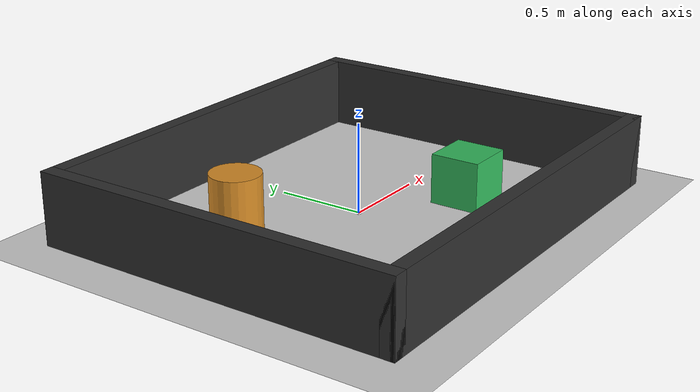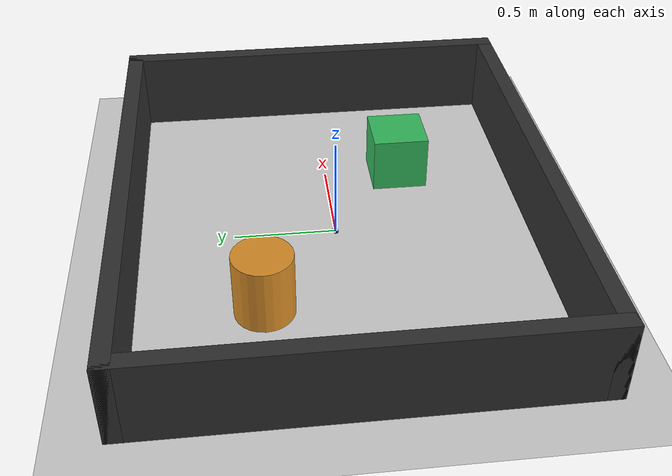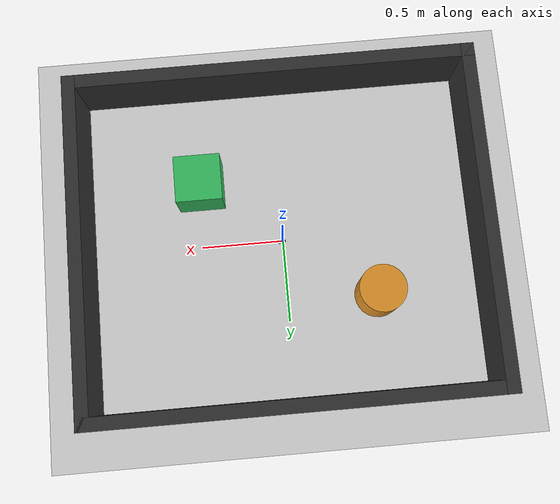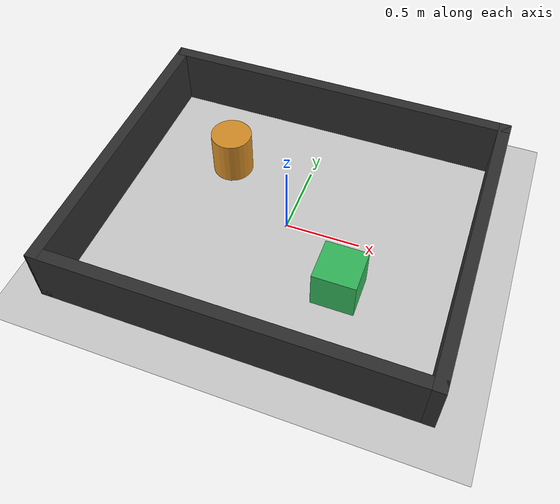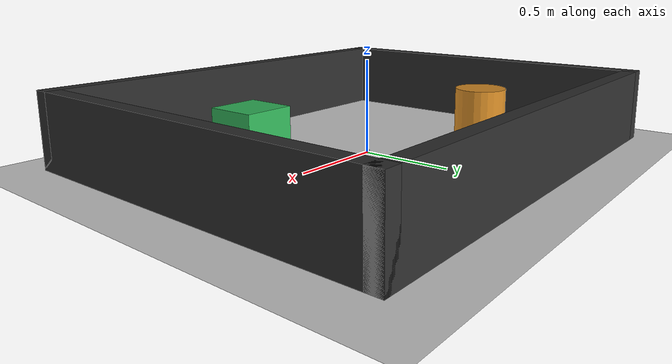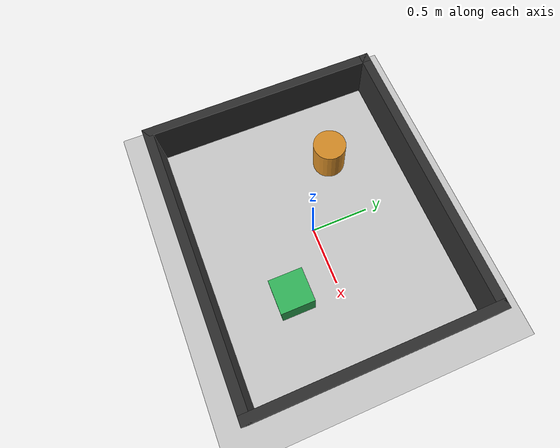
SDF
<?xml version="1.0"?>
<sdf version="1.6">
  <world name="boe_navigation_test_world">
    <plugin name="gazebo_ros_state" filename="libgazebo_ros_state.so">
      <update_rate>30.0</update_rate>
    </plugin>

    <plugin
      name="boe_caster_visual_plugin"
      filename="libboe_caster_visual_plugin.so"/>

    <include>
      <uri>model://ground_plane</uri>
    </include>

    <include>
      <uri>model://sun</uri>
    </include>

    <!-- Hai mesh caster chỉ dùng để hiển thị và được plugin đồng bộ với robot. -->
    <model name="boe_caster_rotation_visual">
      <static>true</static>
      <link name="link">
        <visual name="visual">
          <geometry>
            <mesh>
              <uri>model://boe_robot_description/meshes/caster_rotation_link.STL</uri>
            </mesh>
          </geometry>
          <material>
            <ambient>0.796 0.824 0.937 1</ambient>
            <diffuse>0.796 0.824 0.937 1</diffuse>
          </material>
        </visual>
      </link>
    </model>

    <model name="boe_caster_wheel_visual">
      <static>true</static>
      <link name="link">
        <visual name="visual">
          <pose>0 0 0 -1.5707963268 0 0</pose>
          <geometry>
            <mesh>
              <uri>model://boe_robot_description/meshes/caster_wheel_link.STL</uri>
            </mesh>
          </geometry>
          <material>
            <ambient>0.05 0.05 0.05 1</ambient>
            <diffuse>0.05 0.05 0.05 1</diffuse>
          </material>
        </visual>
      </link>
    </model>

    <!-- Phòng kín 2.4 m x 2.0 m. -->
    <model name="front_wall">
      <static>true</static>
      <pose>1.20 0 0.20 0 0 0</pose>
      <link name="link">
        <collision name="collision">
          <geometry>
            <box>
              <size>0.08 2.08 0.40</size>
            </box>
          </geometry>
        </collision>
        <visual name="visual">
          <geometry>
            <box>
              <size>0.08 2.08 0.40</size>
            </box>
          </geometry>
          <material>
            <ambient>0.18 0.18 0.18 1</ambient>
            <diffuse>0.18 0.18 0.18 1</diffuse>
          </material>
        </visual>
      </link>
    </model>

    <model name="rear_wall">
      <static>true</static>
      <pose>-1.20 0 0.20 0 0 0</pose>
      <link name="link">
        <collision name="collision">
          <geometry>
            <box>
              <size>0.08 2.08 0.40</size>
            </box>
          </geometry>
        </collision>
        <visual name="visual">
          <geometry>
            <box>
              <size>0.08 2.08 0.40</size>
            </box>
          </geometry>
          <material>
            <ambient>0.18 0.18 0.18 1</ambient>
            <diffuse>0.18 0.18 0.18 1</diffuse>
          </material>
        </visual>
      </link>
    </model>

    <model name="left_wall">
      <static>true</static>
      <pose>0 1.00 0.20 0 0 0</pose>
      <link name="link">
        <collision name="collision">
          <geometry>
            <box>
              <size>2.48 0.08 0.40</size>
            </box>
          </geometry>
        </collision>
        <visual name="visual">
          <geometry>
            <box>
              <size>2.48 0.08 0.40</size>
            </box>
          </geometry>
          <material>
            <ambient>0.18 0.18 0.18 1</ambient>
            <diffuse>0.18 0.18 0.18 1</diffuse>
          </material>
        </visual>
      </link>
    </model>

    <model name="right_wall">
      <static>true</static>
      <pose>0 -1.00 0.20 0 0 0</pose>
      <link name="link">
        <collision name="collision">
          <geometry>
            <box>
              <size>2.48 0.08 0.40</size>
            </box>
          </geometry>
        </collision>
        <visual name="visual">
          <geometry>
            <box>
              <size>2.48 0.08 0.40</size>
            </box>
          </geometry>
          <material>
            <ambient>0.18 0.18 0.18 1</ambient>
            <diffuse>0.18 0.18 0.18 1</diffuse>
          </material>
        </visual>
      </link>
    </model>

    <!-- Các vật cản tạo đặc trưng cho scan matching và bài thử Nav2. -->
    <model name="navigation_box">
      <static>true</static>
      <pose>0.48 -0.38 0.14 0 0 0</pose>
      <link name="link">
        <collision name="collision">
          <geometry>
            <box>
              <size>0.28 0.28 0.28</size>
            </box>
          </geometry>
        </collision>
        <visual name="visual">
          <geometry>
            <box>
              <size>0.28 0.28 0.28</size>
            </box>
          </geometry>
          <material>
            <ambient>0.20 0.72 0.36 1</ambient>
            <diffuse>0.20 0.72 0.36 1</diffuse>
          </material>
        </visual>
      </link>
    </model>

    <model name="navigation_cylinder">
      <static>true</static>
      <pose>-0.55 0.38 0.16 0 0 0</pose>
      <link name="link">
        <collision name="collision">
          <geometry>
            <cylinder>
              <radius>0.14</radius>
              <length>0.32</length>
            </cylinder>
          </geometry>
        </collision>
        <visual name="visual">
          <geometry>
            <cylinder>
              <radius>0.14</radius>
              <length>0.32</length>
            </cylinder>
          </geometry>
          <material>
            <ambient>0.84 0.55 0.15 1</ambient>
            <diffuse>0.84 0.55 0.15 1</diffuse>
          </material>
        </visual>
      </link>
    </model>

    <gravity>0 0 -9.81</gravity>

    <physics name="ode_physics" type="ode">
      <max_step_size>0.001</max_step_size>
      <real_time_factor>1.0</real_time_factor>
      <real_time_update_rate>1000.0</real_time_update_rate>
      <ode>
        <solver>
          <!--
            QuickStep tránh khóa hệ tiếp xúc khi Nav2 đổi goal giữa
            lúc robot đang quay. Hai bánh đã có ma sát ngang thấp để
            vẫn quay vi sai đúng hướng.
          -->
          <type>quick</type>
          <iters>100</iters>
          <sor>1.3</sor>
        </solver>
        <constraints>
          <cfm>0.00001</cfm>
          <erp>0.2</erp>
          <contact_max_correcting_vel>1.0</contact_max_correcting_vel>
          <contact_surface_layer>0.0001</contact_surface_layer>
        </constraints>
      </ode>
    </physics>

    <gui fullscreen="0">
      <camera name="user_camera">
        <pose>2.2 -2.2 1.65 0 0.55 2.35</pose>
        <view_controller>orbit</view_controller>
      </camera>
    </gui>
  </world>
</sdf>
